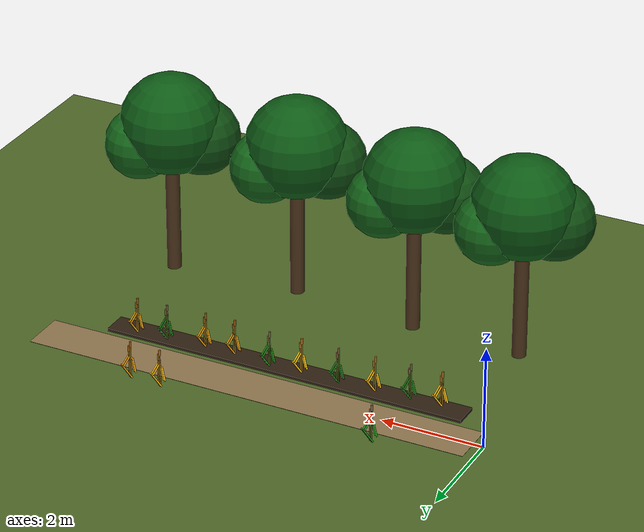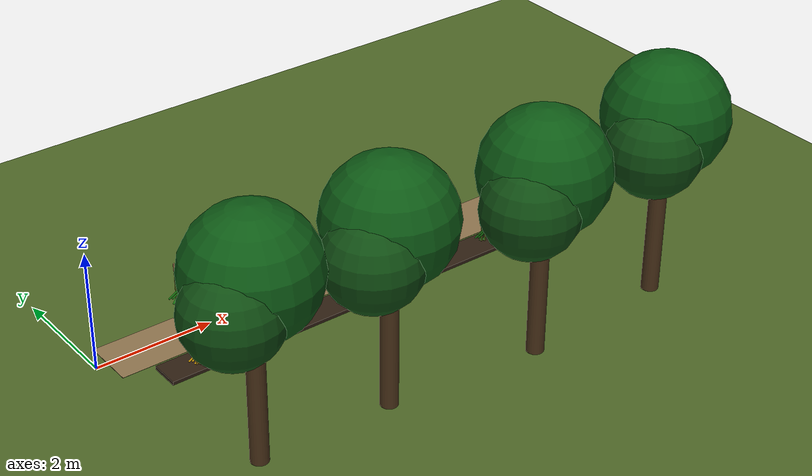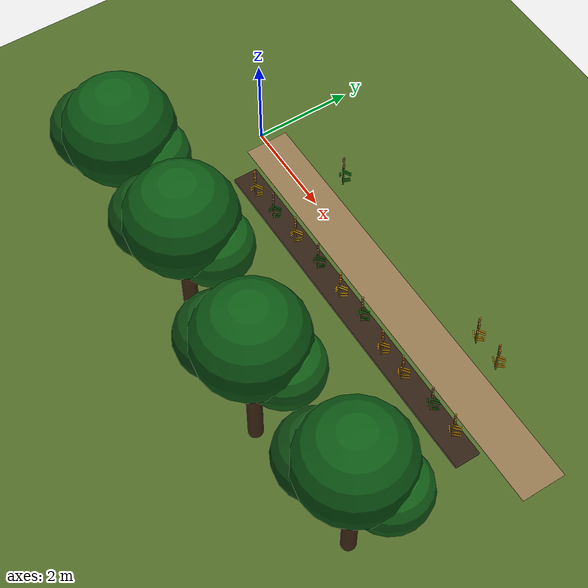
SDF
<sdf version="1.6">
 <world name="default">
  <model name="ground">
   <static>true</static>
   <link name="link">
    <collision name="col"><geometry><plane><normal>0 0 1</normal><size>40 40</size></plane></geometry></collision>
    <visual name="vis">
     <geometry><plane><normal>0 0 1</normal><size>40 40</size></plane></geometry>
     <material><ambient>0.30 0.40 0.15 1</ambient><diffuse>0.30 0.40 0.15 1</diffuse></material>
    </visual>
   </link>
  </model>
  <model name="path_1">
   <static>true</static>
   <pose>4.65 0.00 0.002 0 0 0.00</pose>
   <link name="link">
    <visual name="v">
     <geometry><box><size>8.90 0.90 0.004</size></box></geometry>
     <material><ambient>0.55 0.45 0.30 1</ambient><diffuse>0.55 0.45 0.30 1</diffuse></material>
    </visual>
   </link>
  </model>
  <model name="bed_1a">
   <static>true</static>
   <pose>4.35 -0.80 0.030 0 0 0.00</pose>
   <link name="link">
    <visual name="v">
     <geometry><box><size>7.30 0.50 0.060</size></box></geometry>
     <material><ambient>0.18 0.12 0.07 1</ambient><diffuse>0.18 0.12 0.07 1</diffuse></material>
    </visual>
   </link>
  </model>
  <model name="plant_01">
   <static>true</static>
   <pose>1.22 -0.88 0 0 0 0</pose>
   <link name="link">
    <visual name="stem_0">
     <pose>0.000 0.000 0.320 0.000 0.000 0.000</pose>
     <geometry><cylinder><radius>0.014</radius><length>0.64</length></cylinder></geometry>
     <material><ambient>0.55 0.42 0.08 1</ambient><diffuse>0.55 0.42 0.08 1</diffuse></material>
    </visual>
    <visual name="leaf_0_0">
     <pose>0.050 0.040 0.130 0.000 0.700 0.150</pose>
     <geometry><cylinder><radius>0.014</radius><length>0.3</length></cylinder></geometry>
     <material><ambient>0.92 0.68 0.04 1</ambient><diffuse>0.92 0.68 0.04 1</diffuse></material>
    </visual>
    <visual name="leaf_0_1">
     <pose>-0.050 -0.040 0.250 0.000 -0.720 2.400</pose>
     <geometry><cylinder><radius>0.014</radius><length>0.28</length></cylinder></geometry>
     <material><ambient>0.92 0.68 0.04 1</ambient><diffuse>0.92 0.68 0.04 1</diffuse></material>
    </visual>
    <visual name="leaf_0_2">
     <pose>0.050 0.040 0.360 0.000 0.780 4.400</pose>
     <geometry><cylinder><radius>0.014</radius><length>0.24</length></cylinder></geometry>
     <material><ambient>0.92 0.68 0.04 1</ambient><diffuse>0.92 0.68 0.04 1</diffuse></material>
    </visual>
    <visual name="ear_0">
     <pose>0.000 0.000 0.700 0.000 0.000 0.000</pose>
     <geometry><cylinder><radius>0.02</radius><length>0.12</length></cylinder></geometry>
     <material><ambient>0.68 0.43 0.08 1</ambient><diffuse>0.68 0.43 0.08 1</diffuse></material>
    </visual>
    <visual name="stem_1">
     <pose>0.045 -0.025 0.265 0.000 0.000 0.000</pose>
     <geometry><cylinder><radius>0.014</radius><length>0.53</length></cylinder></geometry>
     <material><ambient>0.55 0.42 0.08 1</ambient><diffuse>0.55 0.42 0.08 1</diffuse></material>
    </visual>
    <visual name="leaf_1_0">
     <pose>0.095 0.015 0.130 0.000 0.700 0.150</pose>
     <geometry><cylinder><radius>0.014</radius><length>0.3</length></cylinder></geometry>
     <material><ambient>0.92 0.68 0.04 1</ambient><diffuse>0.92 0.68 0.04 1</diffuse></material>
    </visual>
    <visual name="leaf_1_1">
     <pose>-0.005 -0.065 0.250 0.000 -0.720 2.400</pose>
     <geometry><cylinder><radius>0.014</radius><length>0.28</length></cylinder></geometry>
     <material><ambient>0.92 0.68 0.04 1</ambient><diffuse>0.92 0.68 0.04 1</diffuse></material>
    </visual>
    <visual name="leaf_1_2">
     <pose>0.095 0.015 0.360 0.000 0.780 4.400</pose>
     <geometry><cylinder><radius>0.014</radius><length>0.24</length></cylinder></geometry>
     <material><ambient>0.92 0.68 0.04 1</ambient><diffuse>0.92 0.68 0.04 1</diffuse></material>
    </visual>
    <visual name="ear_1">
     <pose>0.045 -0.025 0.590 0.000 0.000 0.000</pose>
     <geometry><cylinder><radius>0.02</radius><length>0.12</length></cylinder></geometry>
     <material><ambient>0.68 0.43 0.08 1</ambient><diffuse>0.68 0.43 0.08 1</diffuse></material>
    </visual>
   </link>
  </model>
  <model name="plant_02">
   <static>true</static>
   <pose>1.84 -0.86 0 0 0 0</pose>
   <link name="link">
    <visual name="stem_0">
     <pose>0.000 0.000 0.320 0.000 0.000 0.000</pose>
     <geometry><cylinder><radius>0.014</radius><length>0.64</length></cylinder></geometry>
     <material><ambient>0.30 0.38 0.08 1</ambient><diffuse>0.30 0.38 0.08 1</diffuse></material>
    </visual>
    <visual name="leaf_0_0">
     <pose>0.050 0.040 0.130 0.000 0.700 0.150</pose>
     <geometry><cylinder><radius>0.014</radius><length>0.3</length></cylinder></geometry>
     <material><ambient>0.08 0.42 0.05 1</ambient><diffuse>0.08 0.42 0.05 1</diffuse></material>
    </visual>
    <visual name="leaf_0_1">
     <pose>-0.050 -0.040 0.250 0.000 -0.720 2.400</pose>
     <geometry><cylinder><radius>0.014</radius><length>0.28</length></cylinder></geometry>
     <material><ambient>0.08 0.42 0.05 1</ambient><diffuse>0.08 0.42 0.05 1</diffuse></material>
    </visual>
    <visual name="leaf_0_2">
     <pose>0.050 0.040 0.360 0.000 0.780 4.400</pose>
     <geometry><cylinder><radius>0.014</radius><length>0.24</length></cylinder></geometry>
     <material><ambient>0.08 0.42 0.05 1</ambient><diffuse>0.08 0.42 0.05 1</diffuse></material>
    </visual>
    <visual name="ear_0">
     <pose>0.000 0.000 0.700 0.000 0.000 0.000</pose>
     <geometry><cylinder><radius>0.02</radius><length>0.12</length></cylinder></geometry>
     <material><ambient>0.48 0.36 0.22 1</ambient><diffuse>0.48 0.36 0.22 1</diffuse></material>
    </visual>
    <visual name="stem_1">
     <pose>0.045 -0.025 0.265 0.000 0.000 0.000</pose>
     <geometry><cylinder><radius>0.014</radius><length>0.53</length></cylinder></geometry>
     <material><ambient>0.30 0.38 0.08 1</ambient><diffuse>0.30 0.38 0.08 1</diffuse></material>
    </visual>
    <visual name="leaf_1_0">
     <pose>0.095 0.015 0.130 0.000 0.700 0.150</pose>
     <geometry><cylinder><radius>0.014</radius><length>0.3</length></cylinder></geometry>
     <material><ambient>0.08 0.42 0.05 1</ambient><diffuse>0.08 0.42 0.05 1</diffuse></material>
    </visual>
    <visual name="leaf_1_1">
     <pose>-0.005 -0.065 0.250 0.000 -0.720 2.400</pose>
     <geometry><cylinder><radius>0.014</radius><length>0.28</length></cylinder></geometry>
     <material><ambient>0.08 0.42 0.05 1</ambient><diffuse>0.08 0.42 0.05 1</diffuse></material>
    </visual>
    <visual name="leaf_1_2">
     <pose>0.095 0.015 0.360 0.000 0.780 4.400</pose>
     <geometry><cylinder><radius>0.014</radius><length>0.24</length></cylinder></geometry>
     <material><ambient>0.08 0.42 0.05 1</ambient><diffuse>0.08 0.42 0.05 1</diffuse></material>
    </visual>
    <visual name="ear_1">
     <pose>0.045 -0.025 0.590 0.000 0.000 0.000</pose>
     <geometry><cylinder><radius>0.02</radius><length>0.12</length></cylinder></geometry>
     <material><ambient>0.48 0.36 0.22 1</ambient><diffuse>0.48 0.36 0.22 1</diffuse></material>
    </visual>
   </link>
  </model>
  <model name="plant_03">
   <static>true</static>
   <pose>2.53 -0.81 0 0 0 0</pose>
   <link name="link">
    <visual name="stem_0">
     <pose>0.000 0.000 0.320 0.000 0.000 0.000</pose>
     <geometry><cylinder><radius>0.014</radius><length>0.64</length></cylinder></geometry>
     <material><ambient>0.55 0.42 0.08 1</ambient><diffuse>0.55 0.42 0.08 1</diffuse></material>
    </visual>
    <visual name="leaf_0_0">
     <pose>0.050 0.040 0.130 0.000 0.700 0.150</pose>
     <geometry><cylinder><radius>0.014</radius><length>0.3</length></cylinder></geometry>
     <material><ambient>0.92 0.68 0.04 1</ambient><diffuse>0.92 0.68 0.04 1</diffuse></material>
    </visual>
    <visual name="leaf_0_1">
     <pose>-0.050 -0.040 0.250 0.000 -0.720 2.400</pose>
     <geometry><cylinder><radius>0.014</radius><length>0.28</length></cylinder></geometry>
     <material><ambient>0.92 0.68 0.04 1</ambient><diffuse>0.92 0.68 0.04 1</diffuse></material>
    </visual>
    <visual name="leaf_0_2">
     <pose>0.050 0.040 0.360 0.000 0.780 4.400</pose>
     <geometry><cylinder><radius>0.014</radius><length>0.24</length></cylinder></geometry>
     <material><ambient>0.92 0.68 0.04 1</ambient><diffuse>0.92 0.68 0.04 1</diffuse></material>
    </visual>
    <visual name="ear_0">
     <pose>0.000 0.000 0.700 0.000 0.000 0.000</pose>
     <geometry><cylinder><radius>0.02</radius><length>0.12</length></cylinder></geometry>
     <material><ambient>0.68 0.43 0.08 1</ambient><diffuse>0.68 0.43 0.08 1</diffuse></material>
    </visual>
    <visual name="stem_1">
     <pose>0.045 -0.025 0.265 0.000 0.000 0.000</pose>
     <geometry><cylinder><radius>0.014</radius><length>0.53</length></cylinder></geometry>
     <material><ambient>0.55 0.42 0.08 1</ambient><diffuse>0.55 0.42 0.08 1</diffuse></material>
    </visual>
    <visual name="leaf_1_0">
     <pose>0.095 0.015 0.130 0.000 0.700 0.150</pose>
     <geometry><cylinder><radius>0.014</radius><length>0.3</length></cylinder></geometry>
     <material><ambient>0.92 0.68 0.04 1</ambient><diffuse>0.92 0.68 0.04 1</diffuse></material>
    </visual>
    <visual name="leaf_1_1">
     <pose>-0.005 -0.065 0.250 0.000 -0.720 2.400</pose>
     <geometry><cylinder><radius>0.014</radius><length>0.28</length></cylinder></geometry>
     <material><ambient>0.92 0.68 0.04 1</ambient><diffuse>0.92 0.68 0.04 1</diffuse></material>
    </visual>
    <visual name="leaf_1_2">
     <pose>0.095 0.015 0.360 0.000 0.780 4.400</pose>
     <geometry><cylinder><radius>0.014</radius><length>0.24</length></cylinder></geometry>
     <material><ambient>0.92 0.68 0.04 1</ambient><diffuse>0.92 0.68 0.04 1</diffuse></material>
    </visual>
    <visual name="ear_1">
     <pose>0.045 -0.025 0.590 0.000 0.000 0.000</pose>
     <geometry><cylinder><radius>0.02</radius><length>0.12</length></cylinder></geometry>
     <material><ambient>0.68 0.43 0.08 1</ambient><diffuse>0.68 0.43 0.08 1</diffuse></material>
    </visual>
   </link>
  </model>
  <model name="plant_04">
   <static>true</static>
   <pose>3.26 -0.78 0 0 0 0</pose>
   <link name="link">
    <visual name="stem_0">
     <pose>0.000 0.000 0.320 0.000 0.000 0.000</pose>
     <geometry><cylinder><radius>0.014</radius><length>0.64</length></cylinder></geometry>
     <material><ambient>0.30 0.38 0.08 1</ambient><diffuse>0.30 0.38 0.08 1</diffuse></material>
    </visual>
    <visual name="leaf_0_0">
     <pose>0.050 0.040 0.130 0.000 0.700 0.150</pose>
     <geometry><cylinder><radius>0.014</radius><length>0.3</length></cylinder></geometry>
     <material><ambient>0.08 0.42 0.05 1</ambient><diffuse>0.08 0.42 0.05 1</diffuse></material>
    </visual>
    <visual name="leaf_0_1">
     <pose>-0.050 -0.040 0.250 0.000 -0.720 2.400</pose>
     <geometry><cylinder><radius>0.014</radius><length>0.28</length></cylinder></geometry>
     <material><ambient>0.08 0.42 0.05 1</ambient><diffuse>0.08 0.42 0.05 1</diffuse></material>
    </visual>
    <visual name="leaf_0_2">
     <pose>0.050 0.040 0.360 0.000 0.780 4.400</pose>
     <geometry><cylinder><radius>0.014</radius><length>0.24</length></cylinder></geometry>
     <material><ambient>0.08 0.42 0.05 1</ambient><diffuse>0.08 0.42 0.05 1</diffuse></material>
    </visual>
    <visual name="ear_0">
     <pose>0.000 0.000 0.700 0.000 0.000 0.000</pose>
     <geometry><cylinder><radius>0.02</radius><length>0.12</length></cylinder></geometry>
     <material><ambient>0.48 0.36 0.22 1</ambient><diffuse>0.48 0.36 0.22 1</diffuse></material>
    </visual>
    <visual name="stem_1">
     <pose>0.045 -0.025 0.265 0.000 0.000 0.000</pose>
     <geometry><cylinder><radius>0.014</radius><length>0.53</length></cylinder></geometry>
     <material><ambient>0.30 0.38 0.08 1</ambient><diffuse>0.30 0.38 0.08 1</diffuse></material>
    </visual>
    <visual name="leaf_1_0">
     <pose>0.095 0.015 0.130 0.000 0.700 0.150</pose>
     <geometry><cylinder><radius>0.014</radius><length>0.3</length></cylinder></geometry>
     <material><ambient>0.08 0.42 0.05 1</ambient><diffuse>0.08 0.42 0.05 1</diffuse></material>
    </visual>
    <visual name="leaf_1_1">
     <pose>-0.005 -0.065 0.250 0.000 -0.720 2.400</pose>
     <geometry><cylinder><radius>0.014</radius><length>0.28</length></cylinder></geometry>
     <material><ambient>0.08 0.42 0.05 1</ambient><diffuse>0.08 0.42 0.05 1</diffuse></material>
    </visual>
    <visual name="leaf_1_2">
     <pose>0.095 0.015 0.360 0.000 0.780 4.400</pose>
     <geometry><cylinder><radius>0.014</radius><length>0.24</length></cylinder></geometry>
     <material><ambient>0.08 0.42 0.05 1</ambient><diffuse>0.08 0.42 0.05 1</diffuse></material>
    </visual>
    <visual name="ear_1">
     <pose>0.045 -0.025 0.590 0.000 0.000 0.000</pose>
     <geometry><cylinder><radius>0.02</radius><length>0.12</length></cylinder></geometry>
     <material><ambient>0.48 0.36 0.22 1</ambient><diffuse>0.48 0.36 0.22 1</diffuse></material>
    </visual>
   </link>
  </model>
  <model name="plant_05">
   <static>true</static>
   <pose>4.02 -0.79 0 0 0 0</pose>
   <link name="link">
    <visual name="stem_0">
     <pose>0.000 0.000 0.320 0.000 0.000 0.000</pose>
     <geometry><cylinder><radius>0.014</radius><length>0.64</length></cylinder></geometry>
     <material><ambient>0.55 0.42 0.08 1</ambient><diffuse>0.55 0.42 0.08 1</diffuse></material>
    </visual>
    <visual name="leaf_0_0">
     <pose>0.050 0.040 0.130 0.000 0.700 0.150</pose>
     <geometry><cylinder><radius>0.014</radius><length>0.3</length></cylinder></geometry>
     <material><ambient>0.95 0.73 0.06 1</ambient><diffuse>0.95 0.73 0.06 1</diffuse></material>
    </visual>
    <visual name="leaf_0_1">
     <pose>-0.050 -0.040 0.250 0.000 -0.720 2.400</pose>
     <geometry><cylinder><radius>0.014</radius><length>0.28</length></cylinder></geometry>
     <material><ambient>0.95 0.73 0.06 1</ambient><diffuse>0.95 0.73 0.06 1</diffuse></material>
    </visual>
    <visual name="leaf_0_2">
     <pose>0.050 0.040 0.360 0.000 0.780 4.400</pose>
     <geometry><cylinder><radius>0.014</radius><length>0.24</length></cylinder></geometry>
     <material><ambient>0.95 0.73 0.06 1</ambient><diffuse>0.95 0.73 0.06 1</diffuse></material>
    </visual>
    <visual name="ear_0">
     <pose>0.000 0.000 0.700 0.000 0.000 0.000</pose>
     <geometry><cylinder><radius>0.02</radius><length>0.12</length></cylinder></geometry>
     <material><ambient>0.72 0.45 0.08 1</ambient><diffuse>0.72 0.45 0.08 1</diffuse></material>
    </visual>
    <visual name="stem_1">
     <pose>0.045 -0.025 0.265 0.000 0.000 0.000</pose>
     <geometry><cylinder><radius>0.014</radius><length>0.53</length></cylinder></geometry>
     <material><ambient>0.55 0.42 0.08 1</ambient><diffuse>0.55 0.42 0.08 1</diffuse></material>
    </visual>
    <visual name="leaf_1_0">
     <pose>0.095 0.015 0.130 0.000 0.700 0.150</pose>
     <geometry><cylinder><radius>0.014</radius><length>0.3</length></cylinder></geometry>
     <material><ambient>0.95 0.73 0.06 1</ambient><diffuse>0.95 0.73 0.06 1</diffuse></material>
    </visual>
    <visual name="leaf_1_1">
     <pose>-0.005 -0.065 0.250 0.000 -0.720 2.400</pose>
     <geometry><cylinder><radius>0.014</radius><length>0.28</length></cylinder></geometry>
     <material><ambient>0.95 0.73 0.06 1</ambient><diffuse>0.95 0.73 0.06 1</diffuse></material>
    </visual>
    <visual name="leaf_1_2">
     <pose>0.095 0.015 0.360 0.000 0.780 4.400</pose>
     <geometry><cylinder><radius>0.014</radius><length>0.24</length></cylinder></geometry>
     <material><ambient>0.95 0.73 0.06 1</ambient><diffuse>0.95 0.73 0.06 1</diffuse></material>
    </visual>
    <visual name="ear_1">
     <pose>0.045 -0.025 0.590 0.000 0.000 0.000</pose>
     <geometry><cylinder><radius>0.02</radius><length>0.12</length></cylinder></geometry>
     <material><ambient>0.72 0.45 0.08 1</ambient><diffuse>0.72 0.45 0.08 1</diffuse></material>
    </visual>
   </link>
  </model>
  <model name="plant_06">
   <static>true</static>
   <pose>4.66 -0.74 0 0 0 0</pose>
   <link name="link">
    <visual name="stem_0">
     <pose>0.000 0.000 0.320 0.000 0.000 0.000</pose>
     <geometry><cylinder><radius>0.014</radius><length>0.64</length></cylinder></geometry>
     <material><ambient>0.30 0.38 0.08 1</ambient><diffuse>0.30 0.38 0.08 1</diffuse></material>
    </visual>
    <visual name="leaf_0_0">
     <pose>0.050 0.040 0.130 0.000 0.700 0.150</pose>
     <geometry><cylinder><radius>0.014</radius><length>0.3</length></cylinder></geometry>
     <material><ambient>0.10 0.48 0.06 1</ambient><diffuse>0.10 0.48 0.06 1</diffuse></material>
    </visual>
    <visual name="leaf_0_1">
     <pose>-0.050 -0.040 0.250 0.000 -0.720 2.400</pose>
     <geometry><cylinder><radius>0.014</radius><length>0.28</length></cylinder></geometry>
     <material><ambient>0.10 0.48 0.06 1</ambient><diffuse>0.10 0.48 0.06 1</diffuse></material>
    </visual>
    <visual name="leaf_0_2">
     <pose>0.050 0.040 0.360 0.000 0.780 4.400</pose>
     <geometry><cylinder><radius>0.014</radius><length>0.24</length></cylinder></geometry>
     <material><ambient>0.10 0.48 0.06 1</ambient><diffuse>0.10 0.48 0.06 1</diffuse></material>
    </visual>
    <visual name="ear_0">
     <pose>0.000 0.000 0.700 0.000 0.000 0.000</pose>
     <geometry><cylinder><radius>0.02</radius><length>0.12</length></cylinder></geometry>
     <material><ambient>0.52 0.40 0.25 1</ambient><diffuse>0.52 0.40 0.25 1</diffuse></material>
    </visual>
    <visual name="stem_1">
     <pose>0.045 -0.025 0.265 0.000 0.000 0.000</pose>
     <geometry><cylinder><radius>0.014</radius><length>0.53</length></cylinder></geometry>
     <material><ambient>0.30 0.38 0.08 1</ambient><diffuse>0.30 0.38 0.08 1</diffuse></material>
    </visual>
    <visual name="leaf_1_0">
     <pose>0.095 0.015 0.130 0.000 0.700 0.150</pose>
     <geometry><cylinder><radius>0.014</radius><length>0.3</length></cylinder></geometry>
     <material><ambient>0.10 0.48 0.06 1</ambient><diffuse>0.10 0.48 0.06 1</diffuse></material>
    </visual>
    <visual name="leaf_1_1">
     <pose>-0.005 -0.065 0.250 0.000 -0.720 2.400</pose>
     <geometry><cylinder><radius>0.014</radius><length>0.28</length></cylinder></geometry>
     <material><ambient>0.10 0.48 0.06 1</ambient><diffuse>0.10 0.48 0.06 1</diffuse></material>
    </visual>
    <visual name="leaf_1_2">
     <pose>0.095 0.015 0.360 0.000 0.780 4.400</pose>
     <geometry><cylinder><radius>0.014</radius><length>0.24</length></cylinder></geometry>
     <material><ambient>0.10 0.48 0.06 1</ambient><diffuse>0.10 0.48 0.06 1</diffuse></material>
    </visual>
    <visual name="ear_1">
     <pose>0.045 -0.025 0.590 0.000 0.000 0.000</pose>
     <geometry><cylinder><radius>0.02</radius><length>0.12</length></cylinder></geometry>
     <material><ambient>0.52 0.40 0.25 1</ambient><diffuse>0.52 0.40 0.25 1</diffuse></material>
    </visual>
   </link>
  </model>
  <model name="plant_07">
   <static>true</static>
   <pose>5.43 -0.83 0 0 0 0</pose>
   <link name="link">
    <visual name="stem_0">
     <pose>0.000 0.000 0.320 0.000 0.000 0.000</pose>
     <geometry><cylinder><radius>0.014</radius><length>0.64</length></cylinder></geometry>
     <material><ambient>0.55 0.42 0.08 1</ambient><diffuse>0.55 0.42 0.08 1</diffuse></material>
    </visual>
    <visual name="leaf_0_0">
     <pose>0.050 0.040 0.130 0.000 0.700 0.150</pose>
     <geometry><cylinder><radius>0.014</radius><length>0.3</length></cylinder></geometry>
     <material><ambient>0.86 0.58 0.04 1</ambient><diffuse>0.86 0.58 0.04 1</diffuse></material>
    </visual>
    <visual name="leaf_0_1">
     <pose>-0.050 -0.040 0.250 0.000 -0.720 2.400</pose>
     <geometry><cylinder><radius>0.014</radius><length>0.28</length></cylinder></geometry>
     <material><ambient>0.86 0.58 0.04 1</ambient><diffuse>0.86 0.58 0.04 1</diffuse></material>
    </visual>
    <visual name="leaf_0_2">
     <pose>0.050 0.040 0.360 0.000 0.780 4.400</pose>
     <geometry><cylinder><radius>0.014</radius><length>0.24</length></cylinder></geometry>
     <material><ambient>0.86 0.58 0.04 1</ambient><diffuse>0.86 0.58 0.04 1</diffuse></material>
    </visual>
    <visual name="ear_0">
     <pose>0.000 0.000 0.700 0.000 0.000 0.000</pose>
     <geometry><cylinder><radius>0.02</radius><length>0.12</length></cylinder></geometry>
     <material><ambient>0.62 0.36 0.06 1</ambient><diffuse>0.62 0.36 0.06 1</diffuse></material>
    </visual>
    <visual name="stem_1">
     <pose>0.045 -0.025 0.265 0.000 0.000 0.000</pose>
     <geometry><cylinder><radius>0.014</radius><length>0.53</length></cylinder></geometry>
     <material><ambient>0.55 0.42 0.08 1</ambient><diffuse>0.55 0.42 0.08 1</diffuse></material>
    </visual>
    <visual name="leaf_1_0">
     <pose>0.095 0.015 0.130 0.000 0.700 0.150</pose>
     <geometry><cylinder><radius>0.014</radius><length>0.3</length></cylinder></geometry>
     <material><ambient>0.86 0.58 0.04 1</ambient><diffuse>0.86 0.58 0.04 1</diffuse></material>
    </visual>
    <visual name="leaf_1_1">
     <pose>-0.005 -0.065 0.250 0.000 -0.720 2.400</pose>
     <geometry><cylinder><radius>0.014</radius><length>0.28</length></cylinder></geometry>
     <material><ambient>0.86 0.58 0.04 1</ambient><diffuse>0.86 0.58 0.04 1</diffuse></material>
    </visual>
    <visual name="leaf_1_2">
     <pose>0.095 0.015 0.360 0.000 0.780 4.400</pose>
     <geometry><cylinder><radius>0.014</radius><length>0.24</length></cylinder></geometry>
     <material><ambient>0.86 0.58 0.04 1</ambient><diffuse>0.86 0.58 0.04 1</diffuse></material>
    </visual>
    <visual name="ear_1">
     <pose>0.045 -0.025 0.590 0.000 0.000 0.000</pose>
     <geometry><cylinder><radius>0.02</radius><length>0.12</length></cylinder></geometry>
     <material><ambient>0.62 0.36 0.06 1</ambient><diffuse>0.62 0.36 0.06 1</diffuse></material>
    </visual>
   </link>
  </model>
  <model name="plant_08">
   <static>true</static>
   <pose>6.04 -0.82 0 0 0 0</pose>
   <link name="link">
    <visual name="stem_0">
     <pose>0.000 0.000 0.320 0.000 0.000 0.000</pose>
     <geometry><cylinder><radius>0.014</radius><length>0.64</length></cylinder></geometry>
     <material><ambient>0.55 0.42 0.08 1</ambient><diffuse>0.55 0.42 0.08 1</diffuse></material>
    </visual>
    <visual name="leaf_0_0">
     <pose>0.050 0.040 0.130 0.000 0.700 0.150</pose>
     <geometry><cylinder><radius>0.014</radius><length>0.3</length></cylinder></geometry>
     <material><ambient>0.86 0.58 0.04 1</ambient><diffuse>0.86 0.58 0.04 1</diffuse></material>
    </visual>
    <visual name="leaf_0_1">
     <pose>-0.050 -0.040 0.250 0.000 -0.720 2.400</pose>
     <geometry><cylinder><radius>0.014</radius><length>0.28</length></cylinder></geometry>
     <material><ambient>0.86 0.58 0.04 1</ambient><diffuse>0.86 0.58 0.04 1</diffuse></material>
    </visual>
    <visual name="leaf_0_2">
     <pose>0.050 0.040 0.360 0.000 0.780 4.400</pose>
     <geometry><cylinder><radius>0.014</radius><length>0.24</length></cylinder></geometry>
     <material><ambient>0.86 0.58 0.04 1</ambient><diffuse>0.86 0.58 0.04 1</diffuse></material>
    </visual>
    <visual name="ear_0">
     <pose>0.000 0.000 0.700 0.000 0.000 0.000</pose>
     <geometry><cylinder><radius>0.02</radius><length>0.12</length></cylinder></geometry>
     <material><ambient>0.62 0.36 0.06 1</ambient><diffuse>0.62 0.36 0.06 1</diffuse></material>
    </visual>
    <visual name="stem_1">
     <pose>0.045 -0.025 0.265 0.000 0.000 0.000</pose>
     <geometry><cylinder><radius>0.014</radius><length>0.53</length></cylinder></geometry>
     <material><ambient>0.55 0.42 0.08 1</ambient><diffuse>0.55 0.42 0.08 1</diffuse></material>
    </visual>
    <visual name="leaf_1_0">
     <pose>0.095 0.015 0.130 0.000 0.700 0.150</pose>
     <geometry><cylinder><radius>0.014</radius><length>0.3</length></cylinder></geometry>
     <material><ambient>0.86 0.58 0.04 1</ambient><diffuse>0.86 0.58 0.04 1</diffuse></material>
    </visual>
    <visual name="leaf_1_1">
     <pose>-0.005 -0.065 0.250 0.000 -0.720 2.400</pose>
     <geometry><cylinder><radius>0.014</radius><length>0.28</length></cylinder></geometry>
     <material><ambient>0.86 0.58 0.04 1</ambient><diffuse>0.86 0.58 0.04 1</diffuse></material>
    </visual>
    <visual name="leaf_1_2">
     <pose>0.095 0.015 0.360 0.000 0.780 4.400</pose>
     <geometry><cylinder><radius>0.014</radius><length>0.24</length></cylinder></geometry>
     <material><ambient>0.86 0.58 0.04 1</ambient><diffuse>0.86 0.58 0.04 1</diffuse></material>
    </visual>
    <visual name="ear_1">
     <pose>0.045 -0.025 0.590 0.000 0.000 0.000</pose>
     <geometry><cylinder><radius>0.02</radius><length>0.12</length></cylinder></geometry>
     <material><ambient>0.62 0.36 0.06 1</ambient><diffuse>0.62 0.36 0.06 1</diffuse></material>
    </visual>
   </link>
  </model>
  <model name="plant_09">
   <static>true</static>
   <pose>6.82 -0.75 0 0 0 0</pose>
   <link name="link">
    <visual name="stem_0">
     <pose>0.000 0.000 0.320 0.000 0.000 0.000</pose>
     <geometry><cylinder><radius>0.014</radius><length>0.64</length></cylinder></geometry>
     <material><ambient>0.30 0.38 0.08 1</ambient><diffuse>0.30 0.38 0.08 1</diffuse></material>
    </visual>
    <visual name="leaf_0_0">
     <pose>0.050 0.040 0.130 0.000 0.700 0.150</pose>
     <geometry><cylinder><radius>0.014</radius><length>0.3</length></cylinder></geometry>
     <material><ambient>0.08 0.42 0.05 1</ambient><diffuse>0.08 0.42 0.05 1</diffuse></material>
    </visual>
    <visual name="leaf_0_1">
     <pose>-0.050 -0.040 0.250 0.000 -0.720 2.400</pose>
     <geometry><cylinder><radius>0.014</radius><length>0.28</length></cylinder></geometry>
     <material><ambient>0.08 0.42 0.05 1</ambient><diffuse>0.08 0.42 0.05 1</diffuse></material>
    </visual>
    <visual name="leaf_0_2">
     <pose>0.050 0.040 0.360 0.000 0.780 4.400</pose>
     <geometry><cylinder><radius>0.014</radius><length>0.24</length></cylinder></geometry>
     <material><ambient>0.08 0.42 0.05 1</ambient><diffuse>0.08 0.42 0.05 1</diffuse></material>
    </visual>
    <visual name="ear_0">
     <pose>0.000 0.000 0.700 0.000 0.000 0.000</pose>
     <geometry><cylinder><radius>0.02</radius><length>0.12</length></cylinder></geometry>
     <material><ambient>0.48 0.36 0.22 1</ambient><diffuse>0.48 0.36 0.22 1</diffuse></material>
    </visual>
    <visual name="stem_1">
     <pose>0.045 -0.025 0.265 0.000 0.000 0.000</pose>
     <geometry><cylinder><radius>0.014</radius><length>0.53</length></cylinder></geometry>
     <material><ambient>0.30 0.38 0.08 1</ambient><diffuse>0.30 0.38 0.08 1</diffuse></material>
    </visual>
    <visual name="leaf_1_0">
     <pose>0.095 0.015 0.130 0.000 0.700 0.150</pose>
     <geometry><cylinder><radius>0.014</radius><length>0.3</length></cylinder></geometry>
     <material><ambient>0.08 0.42 0.05 1</ambient><diffuse>0.08 0.42 0.05 1</diffuse></material>
    </visual>
    <visual name="leaf_1_1">
     <pose>-0.005 -0.065 0.250 0.000 -0.720 2.400</pose>
     <geometry><cylinder><radius>0.014</radius><length>0.28</length></cylinder></geometry>
     <material><ambient>0.08 0.42 0.05 1</ambient><diffuse>0.08 0.42 0.05 1</diffuse></material>
    </visual>
    <visual name="leaf_1_2">
     <pose>0.095 0.015 0.360 0.000 0.780 4.400</pose>
     <geometry><cylinder><radius>0.014</radius><length>0.24</length></cylinder></geometry>
     <material><ambient>0.08 0.42 0.05 1</ambient><diffuse>0.08 0.42 0.05 1</diffuse></material>
    </visual>
    <visual name="ear_1">
     <pose>0.045 -0.025 0.590 0.000 0.000 0.000</pose>
     <geometry><cylinder><radius>0.02</radius><length>0.12</length></cylinder></geometry>
     <material><ambient>0.48 0.36 0.22 1</ambient><diffuse>0.48 0.36 0.22 1</diffuse></material>
    </visual>
   </link>
  </model>
  <model name="plant_10">
   <static>true</static>
   <pose>7.44 -0.73 0 0 0 0</pose>
   <link name="link">
    <visual name="stem_0">
     <pose>0.000 0.000 0.320 0.000 0.000 0.000</pose>
     <geometry><cylinder><radius>0.014</radius><length>0.64</length></cylinder></geometry>
     <material><ambient>0.55 0.42 0.08 1</ambient><diffuse>0.55 0.42 0.08 1</diffuse></material>
    </visual>
    <visual name="leaf_0_0">
     <pose>0.050 0.040 0.130 0.000 0.700 0.150</pose>
     <geometry><cylinder><radius>0.014</radius><length>0.3</length></cylinder></geometry>
     <material><ambient>0.86 0.58 0.04 1</ambient><diffuse>0.86 0.58 0.04 1</diffuse></material>
    </visual>
    <visual name="leaf_0_1">
     <pose>-0.050 -0.040 0.250 0.000 -0.720 2.400</pose>
     <geometry><cylinder><radius>0.014</radius><length>0.28</length></cylinder></geometry>
     <material><ambient>0.86 0.58 0.04 1</ambient><diffuse>0.86 0.58 0.04 1</diffuse></material>
    </visual>
    <visual name="leaf_0_2">
     <pose>0.050 0.040 0.360 0.000 0.780 4.400</pose>
     <geometry><cylinder><radius>0.014</radius><length>0.24</length></cylinder></geometry>
     <material><ambient>0.86 0.58 0.04 1</ambient><diffuse>0.86 0.58 0.04 1</diffuse></material>
    </visual>
    <visual name="ear_0">
     <pose>0.000 0.000 0.700 0.000 0.000 0.000</pose>
     <geometry><cylinder><radius>0.02</radius><length>0.12</length></cylinder></geometry>
     <material><ambient>0.62 0.36 0.06 1</ambient><diffuse>0.62 0.36 0.06 1</diffuse></material>
    </visual>
    <visual name="stem_1">
     <pose>0.045 -0.025 0.265 0.000 0.000 0.000</pose>
     <geometry><cylinder><radius>0.014</radius><length>0.53</length></cylinder></geometry>
     <material><ambient>0.55 0.42 0.08 1</ambient><diffuse>0.55 0.42 0.08 1</diffuse></material>
    </visual>
    <visual name="leaf_1_0">
     <pose>0.095 0.015 0.130 0.000 0.700 0.150</pose>
     <geometry><cylinder><radius>0.014</radius><length>0.3</length></cylinder></geometry>
     <material><ambient>0.86 0.58 0.04 1</ambient><diffuse>0.86 0.58 0.04 1</diffuse></material>
    </visual>
    <visual name="leaf_1_1">
     <pose>-0.005 -0.065 0.250 0.000 -0.720 2.400</pose>
     <geometry><cylinder><radius>0.014</radius><length>0.28</length></cylinder></geometry>
     <material><ambient>0.86 0.58 0.04 1</ambient><diffuse>0.86 0.58 0.04 1</diffuse></material>
    </visual>
    <visual name="leaf_1_2">
     <pose>0.095 0.015 0.360 0.000 0.780 4.400</pose>
     <geometry><cylinder><radius>0.014</radius><length>0.24</length></cylinder></geometry>
     <material><ambient>0.86 0.58 0.04 1</ambient><diffuse>0.86 0.58 0.04 1</diffuse></material>
    </visual>
    <visual name="ear_1">
     <pose>0.045 -0.025 0.590 0.000 0.000 0.000</pose>
     <geometry><cylinder><radius>0.02</radius><length>0.12</length></cylinder></geometry>
     <material><ambient>0.62 0.36 0.06 1</ambient><diffuse>0.62 0.36 0.06 1</diffuse></material>
    </visual>
   </link>
  </model>
  <model name="plant_12">
   <static>true</static>
   <pose>1.85 0.73 0 0 0 0</pose>
   <link name="link">
    <visual name="stem_0">
     <pose>0.000 0.000 0.320 0.000 0.000 0.000</pose>
     <geometry><cylinder><radius>0.014</radius><length>0.64</length></cylinder></geometry>
     <material><ambient>0.30 0.38 0.08 1</ambient><diffuse>0.30 0.38 0.08 1</diffuse></material>
    </visual>
    <visual name="leaf_0_0">
     <pose>0.050 0.040 0.130 0.000 0.700 0.150</pose>
     <geometry><cylinder><radius>0.014</radius><length>0.3</length></cylinder></geometry>
     <material><ambient>0.12 0.55 0.08 1</ambient><diffuse>0.12 0.55 0.08 1</diffuse></material>
    </visual>
    <visual name="leaf_0_1">
     <pose>-0.050 -0.040 0.250 0.000 -0.720 2.400</pose>
     <geometry><cylinder><radius>0.014</radius><length>0.28</length></cylinder></geometry>
     <material><ambient>0.12 0.55 0.08 1</ambient><diffuse>0.12 0.55 0.08 1</diffuse></material>
    </visual>
    <visual name="leaf_0_2">
     <pose>0.050 0.040 0.360 0.000 0.780 4.400</pose>
     <geometry><cylinder><radius>0.014</radius><length>0.24</length></cylinder></geometry>
     <material><ambient>0.12 0.55 0.08 1</ambient><diffuse>0.12 0.55 0.08 1</diffuse></material>
    </visual>
    <visual name="ear_0">
     <pose>0.000 0.000 0.700 0.000 0.000 0.000</pose>
     <geometry><cylinder><radius>0.02</radius><length>0.12</length></cylinder></geometry>
     <material><ambient>0.56 0.43 0.26 1</ambient><diffuse>0.56 0.43 0.26 1</diffuse></material>
    </visual>
    <visual name="stem_1">
     <pose>0.045 -0.025 0.265 0.000 0.000 0.000</pose>
     <geometry><cylinder><radius>0.014</radius><length>0.53</length></cylinder></geometry>
     <material><ambient>0.30 0.38 0.08 1</ambient><diffuse>0.30 0.38 0.08 1</diffuse></material>
    </visual>
    <visual name="leaf_1_0">
     <pose>0.095 0.015 0.130 0.000 0.700 0.150</pose>
     <geometry><cylinder><radius>0.014</radius><length>0.3</length></cylinder></geometry>
     <material><ambient>0.12 0.55 0.08 1</ambient><diffuse>0.12 0.55 0.08 1</diffuse></material>
    </visual>
    <visual name="leaf_1_1">
     <pose>-0.005 -0.065 0.250 0.000 -0.720 2.400</pose>
     <geometry><cylinder><radius>0.014</radius><length>0.28</length></cylinder></geometry>
     <material><ambient>0.12 0.55 0.08 1</ambient><diffuse>0.12 0.55 0.08 1</diffuse></material>
    </visual>
    <visual name="leaf_1_2">
     <pose>0.095 0.015 0.360 0.000 0.780 4.400</pose>
     <geometry><cylinder><radius>0.014</radius><length>0.24</length></cylinder></geometry>
     <material><ambient>0.12 0.55 0.08 1</ambient><diffuse>0.12 0.55 0.08 1</diffuse></material>
    </visual>
    <visual name="ear_1">
     <pose>0.045 -0.025 0.590 0.000 0.000 0.000</pose>
     <geometry><cylinder><radius>0.02</radius><length>0.12</length></cylinder></geometry>
     <material><ambient>0.56 0.43 0.26 1</ambient><diffuse>0.56 0.43 0.26 1</diffuse></material>
    </visual>
   </link>
  </model>
  <model name="plant_18">
   <static>true</static>
   <pose>6.13 0.76 0 0 0 0</pose>
   <link name="link">
    <visual name="stem_0">
     <pose>0.000 0.000 0.320 0.000 0.000 0.000</pose>
     <geometry><cylinder><radius>0.014</radius><length>0.64</length></cylinder></geometry>
     <material><ambient>0.55 0.42 0.08 1</ambient><diffuse>0.55 0.42 0.08 1</diffuse></material>
    </visual>
    <visual name="leaf_0_0">
     <pose>0.050 0.040 0.130 0.000 0.700 0.150</pose>
     <geometry><cylinder><radius>0.014</radius><length>0.3</length></cylinder></geometry>
     <material><ambient>0.92 0.68 0.04 1</ambient><diffuse>0.92 0.68 0.04 1</diffuse></material>
    </visual>
    <visual name="leaf_0_1">
     <pose>-0.050 -0.040 0.250 0.000 -0.720 2.400</pose>
     <geometry><cylinder><radius>0.014</radius><length>0.28</length></cylinder></geometry>
     <material><ambient>0.92 0.68 0.04 1</ambient><diffuse>0.92 0.68 0.04 1</diffuse></material>
    </visual>
    <visual name="leaf_0_2">
     <pose>0.050 0.040 0.360 0.000 0.780 4.400</pose>
     <geometry><cylinder><radius>0.014</radius><length>0.24</length></cylinder></geometry>
     <material><ambient>0.92 0.68 0.04 1</ambient><diffuse>0.92 0.68 0.04 1</diffuse></material>
    </visual>
    <visual name="ear_0">
     <pose>0.000 0.000 0.700 0.000 0.000 0.000</pose>
     <geometry><cylinder><radius>0.02</radius><length>0.12</length></cylinder></geometry>
     <material><ambient>0.68 0.43 0.08 1</ambient><diffuse>0.68 0.43 0.08 1</diffuse></material>
    </visual>
    <visual name="stem_1">
     <pose>0.045 -0.025 0.265 0.000 0.000 0.000</pose>
     <geometry><cylinder><radius>0.014</radius><length>0.53</length></cylinder></geometry>
     <material><ambient>0.55 0.42 0.08 1</ambient><diffuse>0.55 0.42 0.08 1</diffuse></material>
    </visual>
    <visual name="leaf_1_0">
     <pose>0.095 0.015 0.130 0.000 0.700 0.150</pose>
     <geometry><cylinder><radius>0.014</radius><length>0.3</length></cylinder></geometry>
     <material><ambient>0.92 0.68 0.04 1</ambient><diffuse>0.92 0.68 0.04 1</diffuse></material>
    </visual>
    <visual name="leaf_1_1">
     <pose>-0.005 -0.065 0.250 0.000 -0.720 2.400</pose>
     <geometry><cylinder><radius>0.014</radius><length>0.28</length></cylinder></geometry>
     <material><ambient>0.92 0.68 0.04 1</ambient><diffuse>0.92 0.68 0.04 1</diffuse></material>
    </visual>
    <visual name="leaf_1_2">
     <pose>0.095 0.015 0.360 0.000 0.780 4.400</pose>
     <geometry><cylinder><radius>0.014</radius><length>0.24</length></cylinder></geometry>
     <material><ambient>0.92 0.68 0.04 1</ambient><diffuse>0.92 0.68 0.04 1</diffuse></material>
    </visual>
    <visual name="ear_1">
     <pose>0.045 -0.025 0.590 0.000 0.000 0.000</pose>
     <geometry><cylinder><radius>0.02</radius><length>0.12</length></cylinder></geometry>
     <material><ambient>0.68 0.43 0.08 1</ambient><diffuse>0.68 0.43 0.08 1</diffuse></material>
    </visual>
   </link>
  </model>
  <model name="plant_19">
   <static>true</static>
   <pose>6.76 0.73 0 0 0 0</pose>
   <link name="link">
    <visual name="stem_0">
     <pose>0.000 0.000 0.320 0.000 0.000 0.000</pose>
     <geometry><cylinder><radius>0.014</radius><length>0.64</length></cylinder></geometry>
     <material><ambient>0.55 0.42 0.08 1</ambient><diffuse>0.55 0.42 0.08 1</diffuse></material>
    </visual>
    <visual name="leaf_0_0">
     <pose>0.050 0.040 0.130 0.000 0.700 0.150</pose>
     <geometry><cylinder><radius>0.014</radius><length>0.3</length></cylinder></geometry>
     <material><ambient>0.86 0.58 0.04 1</ambient><diffuse>0.86 0.58 0.04 1</diffuse></material>
    </visual>
    <visual name="leaf_0_1">
     <pose>-0.050 -0.040 0.250 0.000 -0.720 2.400</pose>
     <geometry><cylinder><radius>0.014</radius><length>0.28</length></cylinder></geometry>
     <material><ambient>0.86 0.58 0.04 1</ambient><diffuse>0.86 0.58 0.04 1</diffuse></material>
    </visual>
    <visual name="leaf_0_2">
     <pose>0.050 0.040 0.360 0.000 0.780 4.400</pose>
     <geometry><cylinder><radius>0.014</radius><length>0.24</length></cylinder></geometry>
     <material><ambient>0.86 0.58 0.04 1</ambient><diffuse>0.86 0.58 0.04 1</diffuse></material>
    </visual>
    <visual name="ear_0">
     <pose>0.000 0.000 0.700 0.000 0.000 0.000</pose>
     <geometry><cylinder><radius>0.02</radius><length>0.12</length></cylinder></geometry>
     <material><ambient>0.62 0.36 0.06 1</ambient><diffuse>0.62 0.36 0.06 1</diffuse></material>
    </visual>
    <visual name="stem_1">
     <pose>0.045 -0.025 0.265 0.000 0.000 0.000</pose>
     <geometry><cylinder><radius>0.014</radius><length>0.53</length></cylinder></geometry>
     <material><ambient>0.55 0.42 0.08 1</ambient><diffuse>0.55 0.42 0.08 1</diffuse></material>
    </visual>
    <visual name="leaf_1_0">
     <pose>0.095 0.015 0.130 0.000 0.700 0.150</pose>
     <geometry><cylinder><radius>0.014</radius><length>0.3</length></cylinder></geometry>
     <material><ambient>0.86 0.58 0.04 1</ambient><diffuse>0.86 0.58 0.04 1</diffuse></material>
    </visual>
    <visual name="leaf_1_1">
     <pose>-0.005 -0.065 0.250 0.000 -0.720 2.400</pose>
     <geometry><cylinder><radius>0.014</radius><length>0.28</length></cylinder></geometry>
     <material><ambient>0.86 0.58 0.04 1</ambient><diffuse>0.86 0.58 0.04 1</diffuse></material>
    </visual>
    <visual name="leaf_1_2">
     <pose>0.095 0.015 0.360 0.000 0.780 4.400</pose>
     <geometry><cylinder><radius>0.014</radius><length>0.24</length></cylinder></geometry>
     <material><ambient>0.86 0.58 0.04 1</ambient><diffuse>0.86 0.58 0.04 1</diffuse></material>
    </visual>
    <visual name="ear_1">
     <pose>0.045 -0.025 0.590 0.000 0.000 0.000</pose>
     <geometry><cylinder><radius>0.02</radius><length>0.12</length></cylinder></geometry>
     <material><ambient>0.62 0.36 0.06 1</ambient><diffuse>0.62 0.36 0.06 1</diffuse></material>
    </visual>
   </link>
  </model>
  <model name="tree_s1">
   <static>true</static>
   <pose>0.76 -3.25 0 0 0 0</pose>
   <link name="link">
    <collision name="trunk_col">
     <pose>0 0 1.1 0 0 0</pose>
     <geometry><cylinder><radius>0.16</radius><length>2.2</length></cylinder></geometry>
    </collision>
    <visual name="trunk">
     <pose>0 0 1.1 0 0 0</pose>
     <geometry><cylinder><radius>0.14</radius><length>2.2</length></cylinder></geometry>
     <material><ambient>0.30 0.20 0.10 1</ambient><diffuse>0.30 0.20 0.10 1</diffuse></material>
    </visual>
    <visual name="crown1">
     <pose>0 0 3.1 0 0 0</pose>
     <geometry><sphere><radius>1.0</radius></sphere></geometry>
     <material><ambient>0.05 0.35 0.08 1</ambient><diffuse>0.05 0.35 0.08 1</diffuse></material>
    </visual>
    <visual name="crown2">
     <pose>0.5 0.3 2.7 0 0 0</pose>
     <geometry><sphere><radius>0.7</radius></sphere></geometry>
     <material><ambient>0.08 0.40 0.10 1</ambient><diffuse>0.08 0.40 0.10 1</diffuse></material>
    </visual>
    <visual name="crown3">
     <pose>-0.5 -0.3 2.8 0 0 0</pose>
     <geometry><sphere><radius>0.75</radius></sphere></geometry>
     <material><ambient>0.06 0.30 0.07 1</ambient><diffuse>0.06 0.30 0.07 1</diffuse></material>
    </visual>
   </link>
  </model>
  <model name="tree_s2">
   <static>true</static>
   <pose>2.97 -3.30 0 0 0 0</pose>
   <link name="link">
    <collision name="trunk_col">
     <pose>0 0 1.1 0 0 0</pose>
     <geometry><cylinder><radius>0.16</radius><length>2.2</length></cylinder></geometry>
    </collision>
    <visual name="trunk">
     <pose>0 0 1.1 0 0 0</pose>
     <geometry><cylinder><radius>0.14</radius><length>2.2</length></cylinder></geometry>
     <material><ambient>0.30 0.20 0.10 1</ambient><diffuse>0.30 0.20 0.10 1</diffuse></material>
    </visual>
    <visual name="crown1">
     <pose>0 0 3.1 0 0 0</pose>
     <geometry><sphere><radius>1.0</radius></sphere></geometry>
     <material><ambient>0.05 0.35 0.08 1</ambient><diffuse>0.05 0.35 0.08 1</diffuse></material>
    </visual>
    <visual name="crown2">
     <pose>0.5 0.3 2.7 0 0 0</pose>
     <geometry><sphere><radius>0.7</radius></sphere></geometry>
     <material><ambient>0.08 0.40 0.10 1</ambient><diffuse>0.08 0.40 0.10 1</diffuse></material>
    </visual>
    <visual name="crown3">
     <pose>-0.5 -0.3 2.8 0 0 0</pose>
     <geometry><sphere><radius>0.75</radius></sphere></geometry>
     <material><ambient>0.06 0.30 0.07 1</ambient><diffuse>0.06 0.30 0.07 1</diffuse></material>
    </visual>
   </link>
  </model>
  <model name="tree_s3">
   <static>true</static>
   <pose>5.54 -3.55 0 0 0 0</pose>
   <link name="link">
    <collision name="trunk_col">
     <pose>0 0 1.1 0 0 0</pose>
     <geometry><cylinder><radius>0.16</radius><length>2.2</length></cylinder></geometry>
    </collision>
    <visual name="trunk">
     <pose>0 0 1.1 0 0 0</pose>
     <geometry><cylinder><radius>0.14</radius><length>2.2</length></cylinder></geometry>
     <material><ambient>0.30 0.20 0.10 1</ambient><diffuse>0.30 0.20 0.10 1</diffuse></material>
    </visual>
    <visual name="crown1">
     <pose>0 0 3.1 0 0 0</pose>
     <geometry><sphere><radius>1.0</radius></sphere></geometry>
     <material><ambient>0.05 0.35 0.08 1</ambient><diffuse>0.05 0.35 0.08 1</diffuse></material>
    </visual>
    <visual name="crown2">
     <pose>0.5 0.3 2.7 0 0 0</pose>
     <geometry><sphere><radius>0.7</radius></sphere></geometry>
     <material><ambient>0.08 0.40 0.10 1</ambient><diffuse>0.08 0.40 0.10 1</diffuse></material>
    </visual>
    <visual name="crown3">
     <pose>-0.5 -0.3 2.8 0 0 0</pose>
     <geometry><sphere><radius>0.75</radius></sphere></geometry>
     <material><ambient>0.06 0.30 0.07 1</ambient><diffuse>0.06 0.30 0.07 1</diffuse></material>
    </visual>
   </link>
  </model>
  <model name="tree_s4">
   <static>true</static>
   <pose>8.13 -3.35 0 0 0 0</pose>
   <link name="link">
    <collision name="trunk_col">
     <pose>0 0 1.1 0 0 0</pose>
     <geometry><cylinder><radius>0.16</radius><length>2.2</length></cylinder></geometry>
    </collision>
    <visual name="trunk">
     <pose>0 0 1.1 0 0 0</pose>
     <geometry><cylinder><radius>0.14</radius><length>2.2</length></cylinder></geometry>
     <material><ambient>0.30 0.20 0.10 1</ambient><diffuse>0.30 0.20 0.10 1</diffuse></material>
    </visual>
    <visual name="crown1">
     <pose>0 0 3.1 0 0 0</pose>
     <geometry><sphere><radius>1.0</radius></sphere></geometry>
     <material><ambient>0.05 0.35 0.08 1</ambient><diffuse>0.05 0.35 0.08 1</diffuse></material>
    </visual>
    <visual name="crown2">
     <pose>0.5 0.3 2.7 0 0 0</pose>
     <geometry><sphere><radius>0.7</radius></sphere></geometry>
     <material><ambient>0.08 0.40 0.10 1</ambient><diffuse>0.08 0.40 0.10 1</diffuse></material>
    </visual>
    <visual name="crown3">
     <pose>-0.5 -0.3 2.8 0 0 0</pose>
     <geometry><sphere><radius>0.75</radius></sphere></geometry>
     <material><ambient>0.06 0.30 0.07 1</ambient><diffuse>0.06 0.30 0.07 1</diffuse></material>
    </visual>
   </link>
  </model>
 </world>
</sdf>
